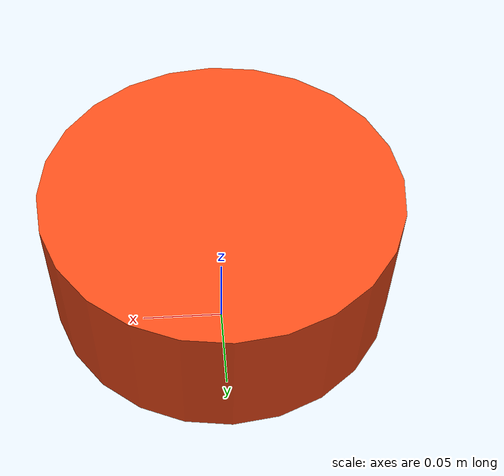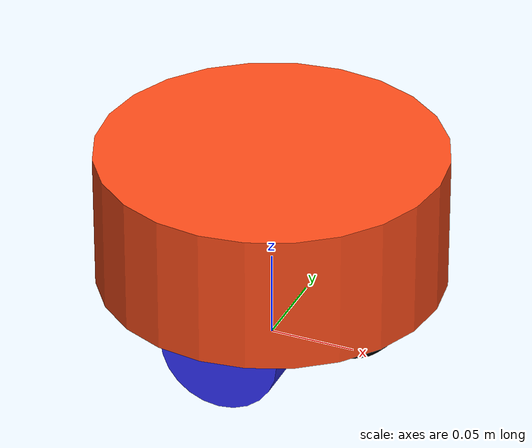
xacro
<?xml version="1.0"?>
<robot xmlns:xacro="http://www.ros.org/wiki/xacro" name="robot">

  <xacro:include filename="inertial_macros.xacro"/>

  <!-- Materials -->
  <material name="white"><color rgba="1 1 1 1"/></material>
  <material name="orange"><color rgba="1 0.3 0.1 1"/></material>
  <material name="blue"><color rgba="0.2 0.2 1 1"/></material>
  <material name="black"><color rgba="0 0 0 1"/></material>
  <material name="red"><color rgba="1 0 0 1"/></material>

  <!-- Base Link -->
  <link name="base_link"/>

  <!-- Base Footprint -->
  <link name="base_footprint"/>
  <joint name="base_footprint_joint" type="fixed">
    <parent link="base_link"/>
    <child link="base_footprint"/>
    <origin xyz="0 0 0" rpy="0 0 0"/>
  </joint>

  <!-- Chassis -->
  <joint name="chassis_joint" type="fixed">
    <parent link="base_link"/>
    <child link="chassis"/>
    <origin xyz="-0.1 0 0"/>
  </joint>

  <link name="chassis">
    <visual>
      <origin xyz="0.1 0 0.08"/>
      <geometry><cylinder radius="0.1" length="0.08"/></geometry>
      <material name="orange"/>
    </visual>
    <collision>
      <origin xyz="0.1 0 0.08"/>
      <geometry><cylinder radius="0.1" length="0.08"/></geometry>
    </collision>
    <xacro:inertial_cylinder mass="0.5" radius="0.1" length="0.08">
      <origin xyz="0 0 0" rpy="0 0 0"/>
    </xacro:inertial_cylinder>
  </link>

  <!-- Left Wheel -->
  <joint name="left_wheel_joint" type="continuous">
    <parent link="base_link"/>
    <child link="left_wheel"/>
    <origin xyz="0 0.06 0.03" rpy="-${pi/2} 0 0"/>
    <axis xyz="0 0 1"/>
  </joint>

  <link name="left_wheel">
    <visual><geometry><cylinder radius="0.035" length="0.03"/></geometry><material name="blue"/></visual>
    <collision><geometry><cylinder radius="0.035" length="0.03"/></geometry></collision>
    <xacro:inertial_cylinder mass="0.1" length="0.03" radius="0.035">
      <origin xyz="0 0 0" rpy="0 0 0"/>
    </xacro:inertial_cylinder>
  </link>

  <!-- Right Wheel -->
  <joint name="right_wheel_joint" type="continuous">
    <parent link="base_link"/>
    <child link="right_wheel"/>
    <origin xyz="0 -0.06 0.03" rpy="${pi/2} 0 0"/>
    <axis xyz="0 0 -1"/>
  </joint>

  <link name="right_wheel">
    <visual><geometry><cylinder radius="0.035" length="0.03"/></geometry><material name="blue"/></visual>
    <collision><geometry><cylinder radius="0.035" length="0.03"/></geometry></collision>
    <xacro:inertial_cylinder mass="0.1" length="0.03" radius="0.035">
      <origin xyz="0 0 0" rpy="0 0 0"/>
    </xacro:inertial_cylinder>
  </link>

  <!-- Caster Wheel -->
  <joint name="caster_wheel_joint" type="fixed">
    <parent link="chassis"/>
    <child link="caster_wheel"/>
    <origin xyz="0.15 0 0.03"/>
  </joint>

  <link name="caster_wheel">
    <visual><geometry><sphere radius="0.03"/></geometry><material name="black"/></visual>
    <collision><geometry><sphere radius="0.03"/></geometry></collision>
    <xacro:inertial_sphere mass="0.1" radius="0.03">
      <origin xyz="0 0 0" rpy="0 0 0"/>
    </xacro:inertial_sphere>
  </link>

  <!-- LiDAR Base -->
  <joint name="laser_joint" type="fixed">
    <parent link="chassis"/>
    <child link="laser_frame"/>
    <origin xyz="0.05 0 0.03"/>
  </joint>

  <link name="laser_frame">
    <visual><geometry><sphere radius="0.03"/></geometry><material name="red"/></visual>
    <collision><geometry><sphere radius="0.03"/></geometry><material name="red"/></collision>
    <xacro:inertial_sphere mass="0.1" radius="0.03">
      <origin xyz="0 0 0" rpy="0 0 0"/>
    </xacro:inertial_sphere>
  </link>

</robot>
